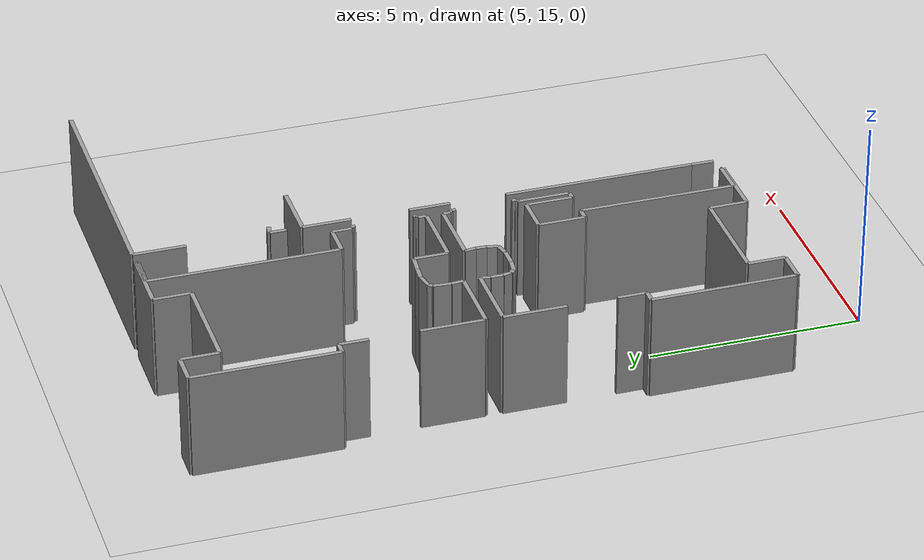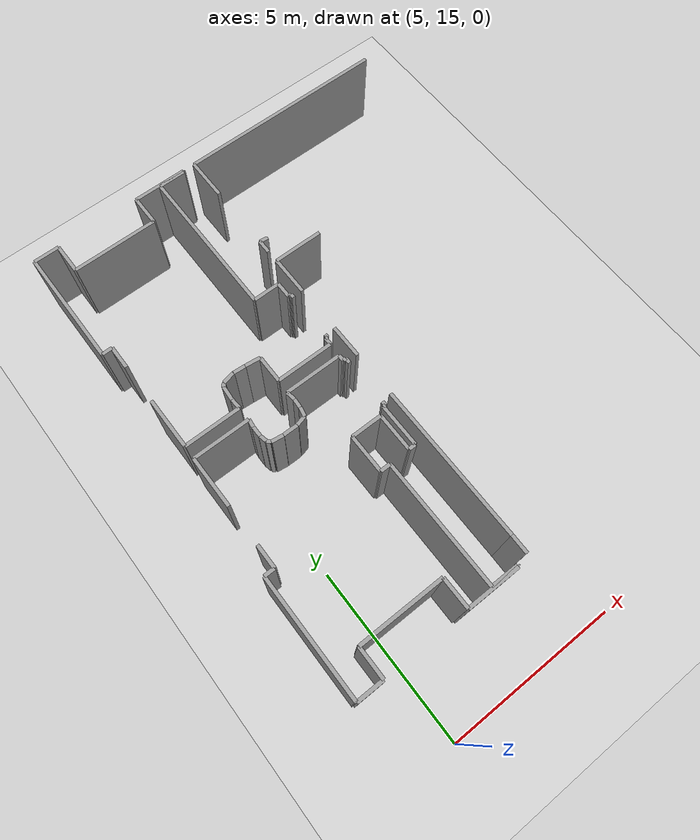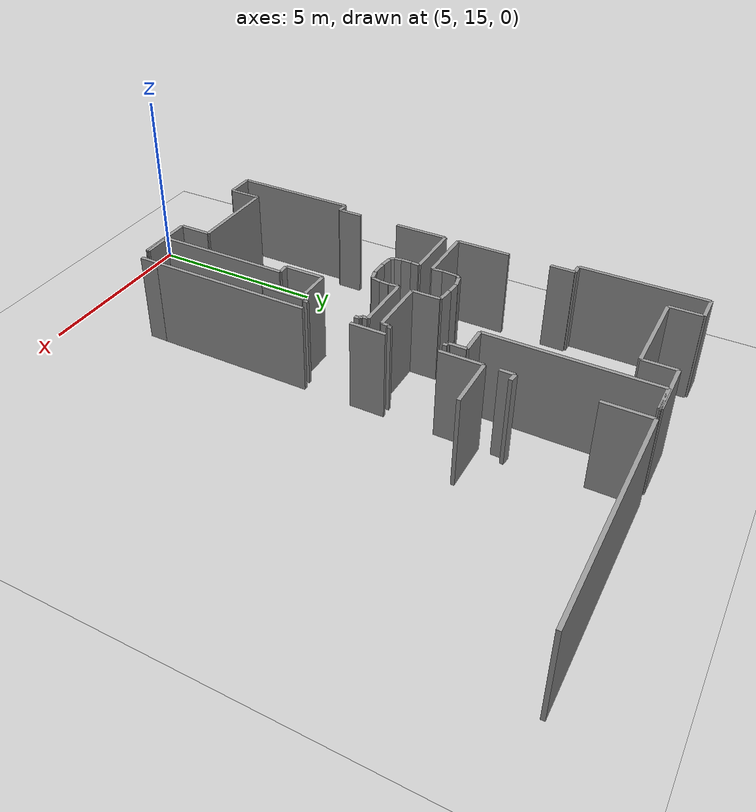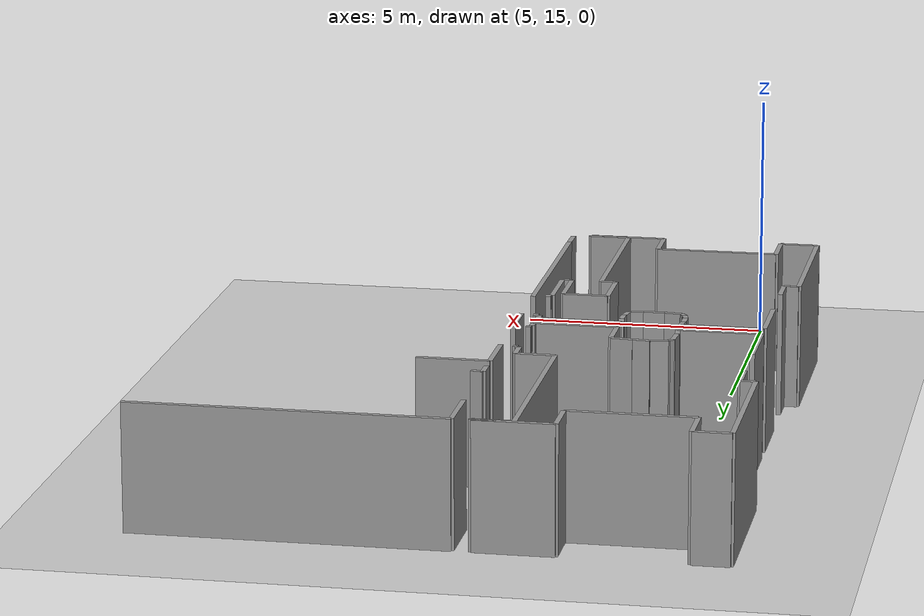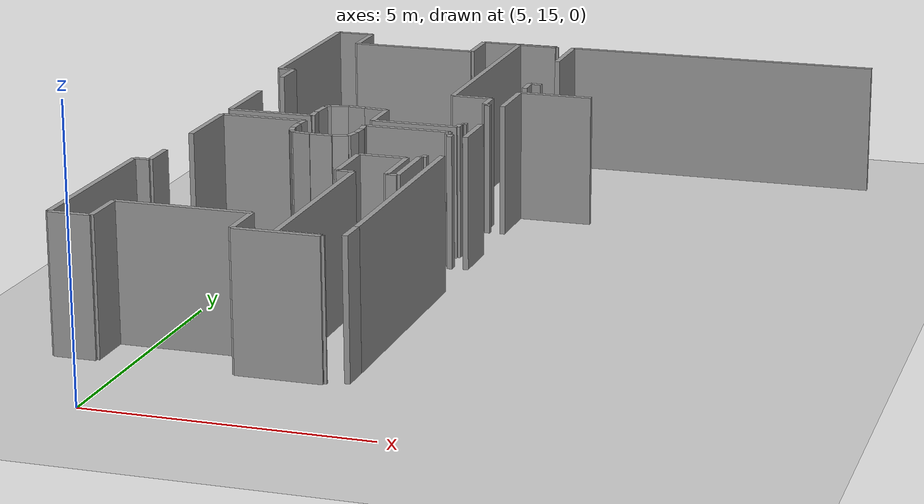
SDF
<sdf version="1.6">
 <world name="default">
  <model name="ground_plane">
   <static>1</static>
   <link name="link">
    <collision name="collision">
     <geometry><plane><normal>0 0 1</normal><size>100 100</size></plane></geometry>
     <surface><friction><ode><mu>100</mu><mu2>50</mu2></ode></friction></surface>
    </collision>
    <visual name="visual">
     <cast_shadows>0</cast_shadows>
     <geometry><plane><normal>0 0 1</normal><size>100 100</size></plane></geometry>
     <material>
      <script><uri>file://media/materials/scripts/gazebo.material</uri><name>Gazebo/Grey</name></script>
     </material>
    </visual>
   </link>
  </model>
  <model name="0510032267_A_40_1_101">
   <static>1</static>
   <link name="Wall_298">
    <collision name="Wall_298_Collision">
     <geometry><box><size>1.46449017976 0.1 2.5</size></box></geometry>
     <pose>0.732245089879 0 1.25 0 0 0</pose>
    </collision>
    <visual name="Wall_298_Visual">
     <pose>0.732245089879 0 1.25 0 0 0</pose>
     <geometry><box><size>1.46449017976 0.1 2.5</size></box></geometry>
     <material>
      <script><uri>file://media/materials/scripts/gazebo.material</uri><name>Gazebo/Grey</name></script>
      <ambient>1 1 1 1</ambient>
     </material>
    </visual>
    <pose>51.702832017 -9.45145159138 0 0 0 1.57079632679</pose>
   </link>
   <link name="Wall_299">
    <collision name="Wall_299_Collision">
     <geometry><box><size>0.66832296558 0.1 2.5</size></box></geometry>
     <pose>0.33416148279 0 1.25 0 0 0</pose>
    </collision>
    <visual name="Wall_299_Visual">
     <pose>0.33416148279 0 1.25 0 0 0</pose>
     <geometry><box><size>0.66832296558 0.1 2.5</size></box></geometry>
     <material>
      <script><uri>file://media/materials/scripts/gazebo.material</uri><name>Gazebo/Grey</name></script>
      <ambient>1 1 1 1</ambient>
     </material>
    </visual>
    <pose>51.702832017 -6.8450047338 0 0 0 1.57079632679</pose>
   </link>
   <link name="Wall_300">
    <collision name="Wall_300_Collision">
     <geometry><box><size>0.293177615819 0.1 2.5</size></box></geometry>
     <pose>0.14658880791 0 1.25 0 0 0</pose>
    </collision>
    <visual name="Wall_300_Visual">
     <pose>0.14658880791 0 1.25 0 0 0</pose>
     <geometry><box><size>0.293177615819 0.1 2.5</size></box></geometry>
     <material>
      <script><uri>file://media/materials/scripts/gazebo.material</uri><name>Gazebo/Grey</name></script>
      <ambient>1 1 1 1</ambient>
     </material>
    </visual>
    <pose>51.702832017 -6.17668176822 0 0 0 3.14159265359</pose>
   </link>
   <link name="Wall_301">
    <collision name="Wall_301_Collision">
     <geometry><box><size>3.38088309114 0.1 2.5</size></box></geometry>
     <pose>1.69044154557 0 1.25 0 0 0</pose>
    </collision>
    <visual name="Wall_301_Visual">
     <pose>1.69044154557 0 1.25 0 0 0</pose>
     <geometry><box><size>3.38088309114 0.1 2.5</size></box></geometry>
     <material>
      <script><uri>file://media/materials/scripts/gazebo.material</uri><name>Gazebo/Grey</name></script>
      <ambient>1 1 1 1</ambient>
     </material>
    </visual>
    <pose>51.4096544012 -6.17668176822 0 0 0 1.57079632679</pose>
   </link>
   <link name="Wall_302">
    <collision name="Wall_302_Collision">
     <geometry><box><size>0.73148259933 0.1 2.5</size></box></geometry>
     <pose>0.365741299665 0 1.25 0 0 0</pose>
    </collision>
    <visual name="Wall_302_Visual">
     <pose>0.365741299665 0 1.25 0 0 0</pose>
     <geometry><box><size>0.73148259933 0.1 2.5</size></box></geometry>
     <material>
      <script><uri>file://media/materials/scripts/gazebo.material</uri><name>Gazebo/Grey</name></script>
      <ambient>1 1 1 1</ambient>
     </material>
    </visual>
    <pose>51.4096544012 -2.79579867708 0 0 0 0.0</pose>
   </link>
   <link name="Wall_303">
    <collision name="Wall_303_Collision">
     <geometry><box><size>0.878262029877 0.1 2.5</size></box></geometry>
     <pose>0.439131014938 0 1.25 0 0 0</pose>
    </collision>
    <visual name="Wall_303_Visual">
     <pose>0.439131014938 0 1.25 0 0 0</pose>
     <geometry><box><size>0.878262029877 0.1 2.5</size></box></geometry>
     <material>
      <script><uri>file://media/materials/scripts/gazebo.material</uri><name>Gazebo/Grey</name></script>
      <ambient>1 1 1 1</ambient>
     </material>
    </visual>
    <pose>52.1411370005 -2.79579867708 0 0 0 -1.57079632679</pose>
   </link>
   <link name="Wall_304">
    <collision name="Wall_304_Collision">
     <geometry><box><size>2.45788828243 0.1 2.5</size></box></geometry>
     <pose>1.22894414121 0 1.25 0 0 0</pose>
    </collision>
    <visual name="Wall_304_Visual">
     <pose>1.22894414121 0 1.25 0 0 0</pose>
     <geometry><box><size>2.45788828243 0.1 2.5</size></box></geometry>
     <material>
      <script><uri>file://media/materials/scripts/gazebo.material</uri><name>Gazebo/Grey</name></script>
      <ambient>1 1 1 1</ambient>
     </material>
    </visual>
    <pose>52.1411370005 -3.67406070696 0 0 0 0.0</pose>
   </link>
   <link name="Wall_305">
    <collision name="Wall_305_Collision">
     <geometry><box><size>0.871907941974 0.1 2.5</size></box></geometry>
     <pose>0.435953970987 0 1.25 0 0 0</pose>
    </collision>
    <visual name="Wall_305_Visual">
     <pose>0.435953970987 0 1.25 0 0 0</pose>
     <geometry><box><size>0.871907941974 0.1 2.5</size></box></geometry>
     <material>
      <script><uri>file://media/materials/scripts/gazebo.material</uri><name>Gazebo/Grey</name></script>
      <ambient>1 1 1 1</ambient>
     </material>
    </visual>
    <pose>54.5990252829 -3.67406070696 0 0 0 1.57079632679</pose>
   </link>
   <link name="Wall_306">
    <collision name="Wall_306_Collision">
     <geometry><box><size>1.54658499546 0.1 2.5</size></box></geometry>
     <pose>0.773292497728 0 1.25 0 0 0</pose>
    </collision>
    <visual name="Wall_306_Visual">
     <pose>0.773292497728 0 1.25 0 0 0</pose>
     <geometry><box><size>1.54658499546 0.1 2.5</size></box></geometry>
     <material>
      <script><uri>file://media/materials/scripts/gazebo.material</uri><name>Gazebo/Grey</name></script>
      <ambient>1 1 1 1</ambient>
     </material>
    </visual>
    <pose>54.5990252829 -2.80215276498 0 0 0 0.0</pose>
   </link>
   <link name="Wall_307">
    <collision name="Wall_307_Collision">
     <geometry><box><size>0.0330412570927 0.1 2.5</size></box></geometry>
     <pose>0.0165206285464 0 1.25 0 0 0</pose>
    </collision>
    <visual name="Wall_307_Visual">
     <pose>0.0165206285464 0 1.25 0 0 0</pose>
     <geometry><box><size>0.0330412570927 0.1 2.5</size></box></geometry>
     <material>
      <script><uri>file://media/materials/scripts/gazebo.material</uri><name>Gazebo/Grey</name></script>
      <ambient>1 1 1 1</ambient>
     </material>
    </visual>
    <pose>56.1456102784 -2.80215276498 0 0 0 -1.57079632679</pose>
   </link>
   <link name="Wall_308">
    <collision name="Wall_308_Collision">
     <geometry><box><size>0.783967365405 0.1 2.5</size></box></geometry>
     <pose>0.391983682702 0 1.25 0 0 0</pose>
    </collision>
    <visual name="Wall_308_Visual">
     <pose>0.391983682702 0 1.25 0 0 0</pose>
     <geometry><box><size>0.783967365405 0.1 2.5</size></box></geometry>
     <material>
      <script><uri>file://media/materials/scripts/gazebo.material</uri><name>Gazebo/Grey</name></script>
      <ambient>1 1 1 1</ambient>
     </material>
    </visual>
    <pose>56.1456102784 -2.83519402207 0 0 0 3.14159265359</pose>
   </link>
   <link name="Wall_309">
    <collision name="Wall_309_Collision">
     <geometry><box><size>4.44188868909 0.1 2.5</size></box></geometry>
     <pose>2.22094434454 0 1.25 0 0 0</pose>
    </collision>
    <visual name="Wall_309_Visual">
     <pose>2.22094434454 0 1.25 0 0 0</pose>
     <geometry><box><size>4.44188868909 0.1 2.5</size></box></geometry>
     <material>
      <script><uri>file://media/materials/scripts/gazebo.material</uri><name>Gazebo/Grey</name></script>
      <ambient>1 1 1 1</ambient>
     </material>
    </visual>
    <pose>55.361642913 -2.83519402207 0 0 0 -1.57079632679</pose>
   </link>
   <link name="Wall_310">
    <collision name="Wall_310_Collision">
     <geometry><box><size>0.766303001036 0.1 2.5</size></box></geometry>
     <pose>0.383151500518 0 1.25 0 0 0</pose>
    </collision>
    <visual name="Wall_310_Visual">
     <pose>0.383151500518 0 1.25 0 0 0</pose>
     <geometry><box><size>0.766303001036 0.1 2.5</size></box></geometry>
     <material>
      <script><uri>file://media/materials/scripts/gazebo.material</uri><name>Gazebo/Grey</name></script>
      <ambient>1 1 1 1</ambient>
     </material>
    </visual>
    <pose>55.361642913 -7.27708271116 0 0 0 0.0</pose>
   </link>
   <link name="Wall_311">
    <collision name="Wall_311_Collision">
     <geometry><box><size>0.454698530299 0.1 2.5</size></box></geometry>
     <pose>0.22734926515 0 1.25 0 0 0</pose>
    </collision>
    <visual name="Wall_311_Visual">
     <pose>0.22734926515 0 1.25 0 0 0</pose>
     <geometry><box><size>0.454698530299 0.1 2.5</size></box></geometry>
     <material>
      <script><uri>file://media/materials/scripts/gazebo.material</uri><name>Gazebo/Grey</name></script>
      <ambient>1 1 1 1</ambient>
     </material>
    </visual>
    <pose>56.127945914 -7.27708271116 0 0 0 -1.57079632679</pose>
   </link>
   <link name="Wall_312">
    <collision name="Wall_312_Collision">
     <geometry><box><size>0.0831114697641 0.1 2.5</size></box></geometry>
     <pose>0.041555734882 0 1.25 0 0 0</pose>
    </collision>
    <visual name="Wall_312_Visual">
     <pose>0.041555734882 0 1.25 0 0 0</pose>
     <geometry><box><size>0.0831114697641 0.1 2.5</size></box></geometry>
     <material>
      <script><uri>file://media/materials/scripts/gazebo.material</uri><name>Gazebo/Grey</name></script>
      <ambient>1 1 1 1</ambient>
     </material>
    </visual>
    <pose>56.127945914 -7.73178124146 0 0 0 0.0</pose>
   </link>
   <link name="Wall_313">
    <collision name="Wall_313_Collision">
     <geometry><box><size>0.106494513245 0.1 2.5</size></box></geometry>
     <pose>0.0532472566226 0 1.25 0 0 0</pose>
    </collision>
    <visual name="Wall_313_Visual">
     <pose>0.0532472566226 0 1.25 0 0 0</pose>
     <geometry><box><size>0.106494513245 0.1 2.5</size></box></geometry>
     <material>
      <script><uri>file://media/materials/scripts/gazebo.material</uri><name>Gazebo/Grey</name></script>
      <ambient>1 1 1 1</ambient>
     </material>
    </visual>
    <pose>56.2110573838 -7.73178124146 0 0 0 -1.57079632679</pose>
   </link>
   <link name="Wall_314">
    <collision name="Wall_314_Collision">
     <geometry><box><size>0.093405092166 0.1 2.5</size></box></geometry>
     <pose>0.046702546083 0 1.25 0 0 0</pose>
    </collision>
    <visual name="Wall_314_Visual">
     <pose>0.046702546083 0 1.25 0 0 0</pose>
     <geometry><box><size>0.093405092166 0.1 2.5</size></box></geometry>
     <material>
      <script><uri>file://media/materials/scripts/gazebo.material</uri><name>Gazebo/Grey</name></script>
      <ambient>1 1 1 1</ambient>
     </material>
    </visual>
    <pose>56.2110573838 -9.1857236353 0 0 0 -1.57079632679</pose>
   </link>
   <link name="Wall_315">
    <collision name="Wall_315_Collision">
     <geometry><box><size>0.0613804891377 0.1 2.5</size></box></geometry>
     <pose>0.0306902445688 0 1.25 0 0 0</pose>
    </collision>
    <visual name="Wall_315_Visual">
     <pose>0.0306902445688 0 1.25 0 0 0</pose>
     <geometry><box><size>0.0613804891377 0.1 2.5</size></box></geometry>
     <material>
      <script><uri>file://media/materials/scripts/gazebo.material</uri><name>Gazebo/Grey</name></script>
      <ambient>1 1 1 1</ambient>
     </material>
    </visual>
    <pose>56.2110573838 -9.27912872747 0 0 0 3.14159265359</pose>
   </link>
   <link name="Wall_316">
    <collision name="Wall_316_Collision">
     <geometry><box><size>0.197866297282 0.1 2.5</size></box></geometry>
     <pose>0.0989331486412 0 1.25 0 0 0</pose>
    </collision>
    <visual name="Wall_316_Visual">
     <pose>0.0989331486412 0 1.25 0 0 0</pose>
     <geometry><box><size>0.197866297282 0.1 2.5</size></box></geometry>
     <material>
      <script><uri>file://media/materials/scripts/gazebo.material</uri><name>Gazebo/Grey</name></script>
      <ambient>1 1 1 1</ambient>
     </material>
    </visual>
    <pose>56.1496768946 -9.27912872747 0 0 0 -1.57079632679</pose>
   </link>
   <link name="Wall_317">
    <collision name="Wall_317_Collision">
     <geometry><box><size>1.63325475445 0.1 2.5</size></box></geometry>
     <pose>0.816627377223 0 1.25 0 0 0</pose>
    </collision>
    <visual name="Wall_317_Visual">
     <pose>0.816627377223 0 1.25 0 0 0</pose>
     <geometry><box><size>1.63325475445 0.1 2.5</size></box></geometry>
     <material>
      <script><uri>file://media/materials/scripts/gazebo.material</uri><name>Gazebo/Grey</name></script>
      <ambient>1 1 1 1</ambient>
     </material>
    </visual>
    <pose>56.1496768946 -9.47699502475 0 0 0 3.14159265359</pose>
   </link>
   <link name="Wall_318">
    <collision name="Wall_318_Collision">
     <geometry><box><size>0.786000673533 0.1 2.5</size></box></geometry>
     <pose>0.393000336767 0 1.25 0 0 0</pose>
    </collision>
    <visual name="Wall_318_Visual">
     <pose>0.393000336767 0 1.25 0 0 0</pose>
     <geometry><box><size>0.786000673533 0.1 2.5</size></box></geometry>
     <material>
      <script><uri>file://media/materials/scripts/gazebo.material</uri><name>Gazebo/Grey</name></script>
      <ambient>1 1 1 1</ambient>
     </material>
    </visual>
    <pose>54.5164221402 -9.47699502475 0 0 0 1.57079632679</pose>
   </link>
   <link name="Wall_319">
    <collision name="Wall_319_Collision">
     <geometry><box><size>0.436144963909 0.1 2.5</size></box></geometry>
     <pose>0.218072481955 0 1.25 0 0 0</pose>
    </collision>
    <visual name="Wall_319_Visual">
     <pose>0.218072481955 0 1.25 0 0 0</pose>
     <geometry><box><size>0.436144963909 0.1 2.5</size></box></geometry>
     <material>
      <script><uri>file://media/materials/scripts/gazebo.material</uri><name>Gazebo/Grey</name></script>
      <ambient>1 1 1 1</ambient>
     </material>
    </visual>
    <pose>54.5164221402 -8.69099435122 0 0 0 3.03357394872</pose>
   </link>
   <link name="Wall_320">
    <collision name="Wall_320_Collision">
     <geometry><box><size>0.340502877694 0.1 2.5</size></box></geometry>
     <pose>0.170251438847 0 1.25 0 0 0</pose>
    </collision>
    <visual name="Wall_320_Visual">
     <pose>0.170251438847 0 1.25 0 0 0</pose>
     <geometry><box><size>0.340502877694 0.1 2.5</size></box></geometry>
     <material>
      <script><uri>file://media/materials/scripts/gazebo.material</uri><name>Gazebo/Grey</name></script>
      <ambient>1 1 1 1</ambient>
     </material>
    </visual>
    <pose>54.0828191817 -8.64397410074 0 0 0 3.06725384754</pose>
   </link>
   <link name="Wall_321">
    <collision name="Wall_321_Collision">
     <geometry><box><size>0.349915876621 0.1 2.5</size></box></geometry>
     <pose>0.174957938311 0 1.25 0 0 0</pose>
    </collision>
    <visual name="Wall_321_Visual">
     <pose>0.174957938311 0 1.25 0 0 0</pose>
     <geometry><box><size>0.349915876621 0.1 2.5</size></box></geometry>
     <material>
      <script><uri>file://media/materials/scripts/gazebo.material</uri><name>Gazebo/Grey</name></script>
      <ambient>1 1 1 1</ambient>
     </material>
    </visual>
    <pose>53.7432567242 -8.61868483089 0 0 0 -2.94419709374</pose>
   </link>
   <link name="Wall_322">
    <collision name="Wall_322_Collision">
     <geometry><box><size>0.110647934627 0.1 2.5</size></box></geometry>
     <pose>0.0553239673136 0 1.25 0 0 0</pose>
    </collision>
    <visual name="Wall_322_Visual">
     <pose>0.0553239673136 0 1.25 0 0 0</pose>
     <geometry><box><size>0.110647934627 0.1 2.5</size></box></geometry>
     <material>
      <script><uri>file://media/materials/scripts/gazebo.material</uri><name>Gazebo/Grey</name></script>
      <ambient>1 1 1 1</ambient>
     </material>
    </visual>
    <pose>53.4001359775 -8.68730898023 0 0 0 -2.23979742174</pose>
   </link>
   <link name="Wall_323">
    <collision name="Wall_323_Collision">
     <geometry><box><size>0.409481010003 0.1 2.5</size></box></geometry>
     <pose>0.204740505001 0 1.25 0 0 0</pose>
    </collision>
    <visual name="Wall_323_Visual">
     <pose>0.204740505001 0 1.25 0 0 0</pose>
     <geometry><box><size>0.409481010003 0.1 2.5</size></box></geometry>
     <material>
      <script><uri>file://media/materials/scripts/gazebo.material</uri><name>Gazebo/Grey</name></script>
      <ambient>1 1 1 1</ambient>
     </material>
    </visual>
    <pose>53.3315118281 -8.77410582098 0 0 0 -1.65032932692</pose>
   </link>
   <link name="Wall_324">
    <collision name="Wall_324_Collision">
     <geometry><box><size>0.290088351918 0.1 2.5</size></box></geometry>
     <pose>0.145044175959 0 1.25 0 0 0</pose>
    </collision>
    <visual name="Wall_324_Visual">
     <pose>0.145044175959 0 1.25 0 0 0</pose>
     <geometry><box><size>0.290088351918 0.1 2.5</size></box></geometry>
     <material>
      <script><uri>file://media/materials/scripts/gazebo.material</uri><name>Gazebo/Grey</name></script>
      <ambient>1 1 1 1</ambient>
     </material>
    </visual>
    <pose>53.2989788981 -9.18229242783 0 0 0 -1.48350770354</pose>
   </link>
   <link name="Wall_325">
    <collision name="Wall_325_Collision">
     <geometry><box><size>1.62296113204 0.1 2.5</size></box></geometry>
     <pose>0.811480566022 0 1.25 0 0 0</pose>
    </collision>
    <visual name="Wall_325_Visual">
     <pose>0.811480566022 0 1.25 0 0 0</pose>
     <geometry><box><size>1.62296113204 0.1 2.5</size></box></geometry>
     <material>
      <script><uri>file://media/materials/scripts/gazebo.material</uri><name>Gazebo/Grey</name></script>
      <ambient>1 1 1 1</ambient>
     </material>
    </visual>
    <pose>53.3242681679 -9.47127634564 0 0 0 3.14159265359</pose>
   </link>
   <link name="Wall_326">
    <collision name="Wall_326_Collision">
     <geometry><box><size>0.0198833208655 0.1 2.5</size></box></geometry>
     <pose>0.00994166043277 0 1.25 0 0 0</pose>
    </collision>
    <visual name="Wall_326_Visual">
     <pose>0.00994166043277 0 1.25 0 0 0</pose>
     <geometry><box><size>0.0198833208655 0.1 2.5</size></box></geometry>
     <material>
      <script><uri>file://media/materials/scripts/gazebo.material</uri><name>Gazebo/Grey</name></script>
      <ambient>1 1 1 1</ambient>
     </material>
    </visual>
    <pose>51.7013070359 -9.47127634564 0 0 0 1.49402443553</pose>
   </link>
   <link name="Wall_327">
    <collision name="Wall_327_Collision">
     <geometry><box><size>3.36474370786 0.1 2.5</size></box></geometry>
     <pose>1.68237185393 0 1.25 0 0 0</pose>
    </collision>
    <visual name="Wall_327_Visual">
     <pose>1.68237185393 0 1.25 0 0 0</pose>
     <geometry><box><size>3.36474370786 0.1 2.5</size></box></geometry>
     <material>
      <script><uri>file://media/materials/scripts/gazebo.material</uri><name>Gazebo/Grey</name></script>
      <ambient>1 1 1 1</ambient>
     </material>
    </visual>
    <pose>51.3972003889 -16.5093182699 0 0 0 1.57079632679</pose>
   </link>
   <link name="Wall_328">
    <collision name="Wall_328_Collision">
     <geometry><box><size>0.297244232077 0.1 2.5</size></box></geometry>
     <pose>0.148622116038 0 1.25 0 0 0</pose>
    </collision>
    <visual name="Wall_328_Visual">
     <pose>0.148622116038 0 1.25 0 0 0</pose>
     <geometry><box><size>0.297244232077 0.1 2.5</size></box></geometry>
     <material>
      <script><uri>file://media/materials/scripts/gazebo.material</uri><name>Gazebo/Grey</name></script>
      <ambient>1 1 1 1</ambient>
     </material>
    </visual>
    <pose>51.3972003889 -13.144574562 0 0 0 0.0</pose>
   </link>
   <link name="Wall_329">
    <collision name="Wall_329_Collision">
     <geometry><box><size>0.673024990628 0.1 2.5</size></box></geometry>
     <pose>0.336512495314 0 1.25 0 0 0</pose>
    </collision>
    <visual name="Wall_329_Visual">
     <pose>0.336512495314 0 1.25 0 0 0</pose>
     <geometry><box><size>0.673024990628 0.1 2.5</size></box></geometry>
     <material>
      <script><uri>file://media/materials/scripts/gazebo.material</uri><name>Gazebo/Grey</name></script>
      <ambient>1 1 1 1</ambient>
     </material>
    </visual>
    <pose>51.6944446209 -13.144574562 0 0 0 1.57079632679</pose>
   </link>
   <link name="Wall_330">
    <collision name="Wall_330_Collision">
     <geometry><box><size>1.47033594063 0.1 2.5</size></box></geometry>
     <pose>0.735167970314 0 1.25 0 0 0</pose>
    </collision>
    <visual name="Wall_330_Visual">
     <pose>0.735167970314 0 1.25 0 0 0</pose>
     <geometry><box><size>1.47033594063 0.1 2.5</size></box></geometry>
     <material>
      <script><uri>file://media/materials/scripts/gazebo.material</uri><name>Gazebo/Grey</name></script>
      <ambient>1 1 1 1</ambient>
     </material>
    </visual>
    <pose>51.6944446209 -11.3245096233 0 0 0 1.57079632679</pose>
   </link>
   <link name="Wall_331">
    <collision name="Wall_331_Collision">
     <geometry><box><size>1.6333818362 0.1 2.5</size></box></geometry>
     <pose>0.816690918102 0 1.25 0 0 0</pose>
    </collision>
    <visual name="Wall_331_Visual">
     <pose>0.816690918102 0 1.25 0 0 0</pose>
     <geometry><box><size>1.6333818362 0.1 2.5</size></box></geometry>
     <material>
      <script><uri>file://media/materials/scripts/gazebo.material</uri><name>Gazebo/Grey</name></script>
      <ambient>1 1 1 1</ambient>
     </material>
    </visual>
    <pose>51.6944446209 -9.85417368264 0 0 0 0.0</pose>
   </link>
   <link name="Wall_332">
    <collision name="Wall_332_Collision">
     <geometry><box><size>0.229424284689 0.1 2.5</size></box></geometry>
     <pose>0.114712142345 0 1.25 0 0 0</pose>
    </collision>
    <visual name="Wall_332_Visual">
     <pose>0.114712142345 0 1.25 0 0 0</pose>
     <geometry><box><size>0.229424284689 0.1 2.5</size></box></geometry>
     <material>
      <script><uri>file://media/materials/scripts/gazebo.material</uri><name>Gazebo/Grey</name></script>
      <ambient>1 1 1 1</ambient>
     </material>
    </visual>
    <pose>53.3278264572 -9.85417368264 0 0 0 -1.69686894246</pose>
   </link>
   <link name="Wall_333">
    <collision name="Wall_333_Collision">
     <geometry><box><size>0.288983917804 0.1 2.5</size></box></geometry>
     <pose>0.144491958902 0 1.25 0 0 0</pose>
    </collision>
    <visual name="Wall_333_Visual">
     <pose>0.144491958902 0 1.25 0 0 0</pose>
     <geometry><box><size>0.288983917804 0.1 2.5</size></box></geometry>
     <material>
      <script><uri>file://media/materials/scripts/gazebo.material</uri><name>Gazebo/Grey</name></script>
      <ambient>1 1 1 1</ambient>
     </material>
    </visual>
    <pose>53.2989788981 -10.0817771113 0 0 0 -1.57079632679</pose>
   </link>
   <link name="Wall_334">
    <collision name="Wall_334_Collision">
     <geometry><box><size>0.199825952286 0.1 2.5</size></box></geometry>
     <pose>0.0999129761429 0 1.25 0 0 0</pose>
    </collision>
    <visual name="Wall_334_Visual">
     <pose>0.0999129761429 0 1.25 0 0 0</pose>
     <geometry><box><size>0.199825952286 0.1 2.5</size></box></geometry>
     <material>
      <script><uri>file://media/materials/scripts/gazebo.material</uri><name>Gazebo/Grey</name></script>
      <ambient>1 1 1 1</ambient>
     </material>
    </visual>
    <pose>53.2989788981 -10.3707610291 0 0 0 -1.35219636071</pose>
   </link>
   <link name="Wall_335">
    <collision name="Wall_335_Collision">
     <geometry><box><size>0.120301931323 0.1 2.5</size></box></geometry>
     <pose>0.0601509656613 0 1.25 0 0 0</pose>
    </collision>
    <visual name="Wall_335_Visual">
     <pose>0.0601509656613 0 1.25 0 0 0</pose>
     <geometry><box><size>0.120301931323 0.1 2.5</size></box></geometry>
     <material>
      <script><uri>file://media/materials/scripts/gazebo.material</uri><name>Gazebo/Grey</name></script>
      <ambient>1 1 1 1</ambient>
     </material>
    </visual>
    <pose>53.3423137776 -10.5658315277 0 0 0 -0.849680730438</pose>
   </link>
   <link name="Wall_336">
    <collision name="Wall_336_Collision">
     <geometry><box><size>0.338787120303 0.1 2.5</size></box></geometry>
     <pose>0.169393560152 0 1.25 0 0 0</pose>
    </collision>
    <visual name="Wall_336_Visual">
     <pose>0.169393560152 0 1.25 0 0 0</pose>
     <geometry><box><size>0.338787120303 0.1 2.5</size></box></geometry>
     <material>
      <script><uri>file://media/materials/scripts/gazebo.material</uri><name>Gazebo/Grey</name></script>
      <ambient>1 1 1 1</ambient>
     </material>
    </visual>
    <pose>53.4217398763 -10.6561866577 0 0 0 -0.128263223846</pose>
   </link>
   <link name="Wall_337">
    <collision name="Wall_337_Collision">
     <geometry><box><size>0.422673927271 0.1 2.5</size></box></geometry>
     <pose>0.211336963636 0 1.25 0 0 0</pose>
    </collision>
    <visual name="Wall_337_Visual">
     <pose>0.211336963636 0 1.25 0 0 0</pose>
     <geometry><box><size>0.422673927271 0.1 2.5</size></box></geometry>
     <material>
      <script><uri>file://media/materials/scripts/gazebo.material</uri><name>Gazebo/Grey</name></script>
      <ambient>1 1 1 1</ambient>
     </material>
    </visual>
    <pose>53.7577440446 -10.6995215372 0 0 0 0.0</pose>
   </link>
   <link name="Wall_338">
    <collision name="Wall_338_Collision">
     <geometry><box><size>0.287426293606 0.1 2.5</size></box></geometry>
     <pose>0.143713146803 0 1.25 0 0 0</pose>
    </collision>
    <visual name="Wall_338_Visual">
     <pose>0.143713146803 0 1.25 0 0 0</pose>
     <geometry><box><size>0.287426293606 0.1 2.5</size></box></geometry>
     <material>
      <script><uri>file://media/materials/scripts/gazebo.material</uri><name>Gazebo/Grey</name></script>
      <ambient>1 1 1 1</ambient>
     </material>
    </visual>
    <pose>54.1804179719 -10.6995215372 0 0 0 0.254308151153</pose>
   </link>
   <link name="Wall_339">
    <collision name="Wall_339_Collision">
     <geometry><box><size>0.262102852638 0.1 2.5</size></box></geometry>
     <pose>0.131051426319 0 1.25 0 0 0</pose>
    </collision>
    <visual name="Wall_339_Visual">
     <pose>0.131051426319 0 1.25 0 0 0</pose>
     <geometry><box><size>0.262102852638 0.1 2.5</size></box></geometry>
     <material>
      <script><uri>file://media/materials/scripts/gazebo.material</uri><name>Gazebo/Grey</name></script>
      <ambient>1 1 1 1</ambient>
     </material>
    </visual>
    <pose>54.4585999403 -10.6272120169 0 0 0 1.36275073219</pose>
   </link>
   <link name="Wall_340">
    <collision name="Wall_340_Collision">
     <geometry><box><size>0.253307322074 0.1 2.5</size></box></geometry>
     <pose>0.126653661037 0 1.25 0 0 0</pose>
    </collision>
    <visual name="Wall_340_Visual">
     <pose>0.126653661037 0 1.25 0 0 0</pose>
     <geometry><box><size>0.253307322074 0.1 2.5</size></box></geometry>
     <material>
      <script><uri>file://media/materials/scripts/gazebo.material</uri><name>Gazebo/Grey</name></script>
      <ambient>1 1 1 1</ambient>
     </material>
    </visual>
    <pose>54.5127367692 -10.3707610291 0 0 0 1.51357243783</pose>
   </link>
   <link name="Wall_341">
    <collision name="Wall_341_Collision">
     <geometry><box><size>0.258978155882 0.1 2.5</size></box></geometry>
     <pose>0.129489077941 0 1.25 0 0 0</pose>
    </collision>
    <visual name="Wall_341_Visual">
     <pose>0.129489077941 0 1.25 0 0 0</pose>
     <geometry><box><size>0.258978155882 0.1 2.5</size></box></geometry>
     <material>
      <script><uri>file://media/materials/scripts/gazebo.material</uri><name>Gazebo/Grey</name></script>
      <ambient>1 1 1 1</ambient>
     </material>
    </visual>
    <pose>54.5272240896 -10.1178683306 0 0 0 1.71061149683</pose>
   </link>
   <link name="Wall_342">
    <collision name="Wall_342_Collision">
     <geometry><box><size>1.64024425114 0.1 2.5</size></box></geometry>
     <pose>0.820122125569 0 1.25 0 0 0</pose>
    </collision>
    <visual name="Wall_342_Visual">
     <pose>0.820122125569 0 1.25 0 0 0</pose>
     <geometry><box><size>1.64024425114 0.1 2.5</size></box></geometry>
     <material>
      <script><uri>file://media/materials/scripts/gazebo.material</uri><name>Gazebo/Grey</name></script>
      <ambient>1 1 1 1</ambient>
     </material>
    </visual>
    <pose>54.4911328703 -9.86141734285 0 0 0 0.0</pose>
   </link>
   <link name="Wall_343">
    <collision name="Wall_343_Collision">
     <geometry><box><size>0.171560373366 0.1 2.5</size></box></geometry>
     <pose>0.0857801866831 0 1.25 0 0 0</pose>
    </collision>
    <visual name="Wall_343_Visual">
     <pose>0.0857801866831 0 1.25 0 0 0</pose>
     <geometry><box><size>0.171560373366 0.1 2.5</size></box></geometry>
     <material>
      <script><uri>file://media/materials/scripts/gazebo.material</uri><name>Gazebo/Grey</name></script>
      <ambient>1 1 1 1</ambient>
     </material>
    </visual>
    <pose>56.1313771215 -9.86141734285 0 0 0 -1.57079632679</pose>
   </link>
   <link name="Wall_344">
    <collision name="Wall_344_Collision">
     <geometry><box><size>0.082984388006 0.1 2.5</size></box></geometry>
     <pose>0.041492194003 0 1.25 0 0 0</pose>
    </collision>
    <visual name="Wall_344_Visual">
     <pose>0.041492194003 0 1.25 0 0 0</pose>
     <geometry><box><size>0.082984388006 0.1 2.5</size></box></geometry>
     <material>
      <script><uri>file://media/materials/scripts/gazebo.material</uri><name>Gazebo/Grey</name></script>
      <ambient>1 1 1 1</ambient>
     </material>
    </visual>
    <pose>56.1313771215 -10.0329777162 0 0 0 0.0</pose>
   </link>
   <link name="Wall_345">
    <collision name="Wall_345_Collision">
     <geometry><box><size>0.145381531208 0.1 2.5</size></box></geometry>
     <pose>0.0726907656041 0 1.25 0 0 0</pose>
    </collision>
    <visual name="Wall_345_Visual">
     <pose>0.0726907656041 0 1.25 0 0 0</pose>
     <geometry><box><size>0.145381531208 0.1 2.5</size></box></geometry>
     <material>
      <script><uri>file://media/materials/scripts/gazebo.material</uri><name>Gazebo/Grey</name></script>
      <ambient>1 1 1 1</ambient>
     </material>
    </visual>
    <pose>56.2143615095 -10.0329777162 0 0 0 -1.57079632679</pose>
   </link>
   <link name="Wall_346">
    <collision name="Wall_346_Collision">
     <geometry><box><size>0.117423544437 0.1 2.5</size></box></geometry>
     <pose>0.0587117722187 0 1.25 0 0 0</pose>
    </collision>
    <visual name="Wall_346_Visual">
     <pose>0.0587117722187 0 1.25 0 0 0</pose>
     <geometry><box><size>0.117423544437 0.1 2.5</size></box></geometry>
     <material>
      <script><uri>file://media/materials/scripts/gazebo.material</uri><name>Gazebo/Grey</name></script>
      <ambient>1 1 1 1</ambient>
     </material>
    </visual>
    <pose>56.2143615095 -11.4960699966 0 0 0 -1.57079632679</pose>
   </link>
   <link name="Wall_347">
    <collision name="Wall_347_Collision">
     <geometry><box><size>0.0687512311045 0.1 2.5</size></box></geometry>
     <pose>0.0343756155523 0 1.25 0 0 0</pose>
    </collision>
    <visual name="Wall_347_Visual">
     <pose>0.0343756155523 0 1.25 0 0 0</pose>
     <geometry><box><size>0.0687512311045 0.1 2.5</size></box></geometry>
     <material>
      <script><uri>file://media/materials/scripts/gazebo.material</uri><name>Gazebo/Grey</name></script>
      <ambient>1 1 1 1</ambient>
     </material>
    </visual>
    <pose>56.2143615095 -11.6134935411 0 0 0 3.14159265359</pose>
   </link>
   <link name="Wall_348">
    <collision name="Wall_348_Collision">
     <geometry><box><size>1.22786394627 0.1 2.5</size></box></geometry>
     <pose>0.613931973135 0 1.25 0 0 0</pose>
    </collision>
    <visual name="Wall_348_Visual">
     <pose>0.613931973135 0 1.25 0 0 0</pose>
     <geometry><box><size>1.22786394627 0.1 2.5</size></box></geometry>
     <material>
      <script><uri>file://media/materials/scripts/gazebo.material</uri><name>Gazebo/Grey</name></script>
      <ambient>1 1 1 1</ambient>
     </material>
    </visual>
    <pose>56.1456102784 -11.6134935411 0 0 0 -1.57079632679</pose>
   </link>
   <link name="Wall_349">
    <collision name="Wall_349_Collision">
     <geometry><box><size>0.197103806734 0.1 2.5</size></box></geometry>
     <pose>0.098551903367 0 1.25 0 0 0</pose>
    </collision>
    <visual name="Wall_349_Visual">
     <pose>0.098551903367 0 1.25 0 0 0</pose>
     <geometry><box><size>0.197103806734 0.1 2.5</size></box></geometry>
     <material>
      <script><uri>file://media/materials/scripts/gazebo.material</uri><name>Gazebo/Grey</name></script>
      <ambient>1 1 1 1</ambient>
     </material>
    </visual>
    <pose>56.1456102784 -12.8413574873 0 0 0 3.14159265359</pose>
   </link>
   <link name="Wall_350">
    <collision name="Wall_350_Collision">
     <geometry><box><size>1.08438864143 0.1 2.5</size></box></geometry>
     <pose>0.542194320716 0 1.25 0 0 0</pose>
    </collision>
    <visual name="Wall_350_Visual">
     <pose>0.542194320716 0 1.25 0 0 0</pose>
     <geometry><box><size>1.08438864143 0.1 2.5</size></box></geometry>
     <material>
      <script><uri>file://media/materials/scripts/gazebo.material</uri><name>Gazebo/Grey</name></script>
      <ambient>1 1 1 1</ambient>
     </material>
    </visual>
    <pose>55.9485064716 -12.8413574873 0 0 0 1.57079632679</pose>
   </link>
   <link name="Wall_351">
    <collision name="Wall_351_Collision">
     <geometry><box><size>0.892113941504 0.1 2.5</size></box></geometry>
     <pose>0.446056970752 0 1.25 0 0 0</pose>
    </collision>
    <visual name="Wall_351_Visual">
     <pose>0.446056970752 0 1.25 0 0 0</pose>
     <geometry><box><size>0.892113941504 0.1 2.5</size></box></geometry>
     <material>
      <script><uri>file://media/materials/scripts/gazebo.material</uri><name>Gazebo/Grey</name></script>
      <ambient>1 1 1 1</ambient>
     </material>
    </visual>
    <pose>55.9485064716 -11.7569688459 0 0 0 3.14159265359</pose>
   </link>
   <link name="Wall_352">
    <collision name="Wall_352_Collision">
     <geometry><box><size>1.09264895571 0.1 2.5</size></box></geometry>
     <pose>0.546324477853 0 1.25 0 0 0</pose>
    </collision>
    <visual name="Wall_352_Visual">
     <pose>0.546324477853 0 1.25 0 0 0</pose>
     <geometry><box><size>1.09264895571 0.1 2.5</size></box></geometry>
     <material>
      <script><uri>file://media/materials/scripts/gazebo.material</uri><name>Gazebo/Grey</name></script>
      <ambient>1 1 1 1</ambient>
     </material>
    </visual>
    <pose>55.0563925301 -11.7569688459 0 0 0 -1.57079632679</pose>
   </link>
   <link name="Wall_353">
    <collision name="Wall_353_Collision">
     <geometry><box><size>0.293940106367 0.1 2.5</size></box></geometry>
     <pose>0.146970053184 0 1.25 0 0 0</pose>
    </collision>
    <visual name="Wall_353_Visual">
     <pose>0.146970053184 0 1.25 0 0 0</pose>
     <geometry><box><size>0.293940106367 0.1 2.5</size></box></geometry>
     <material>
      <script><uri>file://media/materials/scripts/gazebo.material</uri><name>Gazebo/Grey</name></script>
      <ambient>1 1 1 1</ambient>
     </material>
    </visual>
    <pose>55.0563925301 -12.8496178016 0 0 0 0.0</pose>
   </link>
   <link name="Wall_354">
    <collision name="Wall_354_Collision">
     <geometry><box><size>3.64419649381 0.1 2.5</size></box></geometry>
     <pose>1.82209824691 0 1.25 0 0 0</pose>
    </collision>
    <visual name="Wall_354_Visual">
     <pose>1.82209824691 0 1.25 0 0 0</pose>
     <geometry><box><size>3.64419649381 0.1 2.5</size></box></geometry>
     <material>
      <script><uri>file://media/materials/scripts/gazebo.material</uri><name>Gazebo/Grey</name></script>
      <ambient>1 1 1 1</ambient>
     </material>
    </visual>
    <pose>55.3503326365 -12.8496178016 0 0 0 -1.57079632679</pose>
   </link>
   <link name="Wall_355">
    <collision name="Wall_355_Collision">
     <geometry><box><size>0.788033981662 0.1 2.5</size></box></geometry>
     <pose>0.394016990831 0 1.25 0 0 0</pose>
    </collision>
    <visual name="Wall_355_Visual">
     <pose>0.394016990831 0 1.25 0 0 0</pose>
     <geometry><box><size>0.788033981662 0.1 2.5</size></box></geometry>
     <material>
      <script><uri>file://media/materials/scripts/gazebo.material</uri><name>Gazebo/Grey</name></script>
      <ambient>1 1 1 1</ambient>
     </material>
    </visual>
    <pose>55.3503326365 -16.4938142954 0 0 0 0.0</pose>
   </link>
   <link name="Wall_356">
    <collision name="Wall_356_Collision">
     <geometry><box><size>0.0397765902694 0.1 2.5</size></box></geometry>
     <pose>0.0198882951347 0 1.25 0 0 0</pose>
    </collision>
    <visual name="Wall_356_Visual">
     <pose>0.0198882951347 0 1.25 0 0 0</pose>
     <geometry><box><size>0.0397765902694 0.1 2.5</size></box></geometry>
     <material>
      <script><uri>file://media/materials/scripts/gazebo.material</uri><name>Gazebo/Grey</name></script>
      <ambient>1 1 1 1</ambient>
     </material>
    </visual>
    <pose>56.1383666182 -16.4938142954 0 0 0 -1.57079632679</pose>
   </link>
   <link name="Wall_357">
    <collision name="Wall_357_Collision">
     <geometry><box><size>1.53171642977 0.1 2.5</size></box></geometry>
     <pose>0.765858214883 0 1.25 0 0 0</pose>
    </collision>
    <visual name="Wall_357_Visual">
     <pose>0.765858214883 0 1.25 0 0 0</pose>
     <geometry><box><size>1.53171642977 0.1 2.5</size></box></geometry>
     <material>
      <script><uri>file://media/materials/scripts/gazebo.material</uri><name>Gazebo/Grey</name></script>
      <ambient>1 1 1 1</ambient>
     </material>
    </visual>
    <pose>56.1383666182 -16.5335908857 0 0 0 3.14159265359</pose>
   </link>
   <link name="Wall_358">
    <collision name="Wall_358_Collision">
     <geometry><box><size>0.874195413619 0.1 2.5</size></box></geometry>
     <pose>0.43709770681 0 1.25 0 0 0</pose>
    </collision>
    <visual name="Wall_358_Visual">
     <pose>0.43709770681 0 1.25 0 0 0</pose>
     <geometry><box><size>0.874195413619 0.1 2.5</size></box></geometry>
     <material>
      <script><uri>file://media/materials/scripts/gazebo.material</uri><name>Gazebo/Grey</name></script>
      <ambient>1 1 1 1</ambient>
     </material>
    </visual>
    <pose>54.6066501884 -16.5335908857 0 0 0 1.57079632679</pose>
   </link>
   <link name="Wall_359">
    <collision name="Wall_359_Collision">
     <geometry><box><size>2.45102586749 0.1 2.5</size></box></geometry>
     <pose>1.22551293375 0 1.25 0 0 0</pose>
    </collision>
    <visual name="Wall_359_Visual">
     <pose>1.22551293375 0 1.25 0 0 0</pose>
     <geometry><box><size>2.45102586749 0.1 2.5</size></box></geometry>
     <material>
      <script><uri>file://media/materials/scripts/gazebo.material</uri><name>Gazebo/Grey</name></script>
      <ambient>1 1 1 1</ambient>
     </material>
    </visual>
    <pose>54.6066501884 -15.6593954721 0 0 0 3.14159265359</pose>
   </link>
   <link name="Wall_360">
    <collision name="Wall_360_Collision">
     <geometry><box><size>0.875084985926 0.1 2.5</size></box></geometry>
     <pose>0.437542492963 0 1.25 0 0 0</pose>
    </collision>
    <visual name="Wall_360_Visual">
     <pose>0.437542492963 0 1.25 0 0 0</pose>
     <geometry><box><size>0.875084985926 0.1 2.5</size></box></geometry>
     <material>
      <script><uri>file://media/materials/scripts/gazebo.material</uri><name>Gazebo/Grey</name></script>
      <ambient>1 1 1 1</ambient>
     </material>
    </visual>
    <pose>52.1556243209 -15.6593954721 0 0 0 -1.57079632679</pose>
   </link>
   <link name="Wall_361">
    <collision name="Wall_361_Collision">
     <geometry><box><size>0.760203076649 0.1 2.5</size></box></geometry>
     <pose>0.380101538325 0 1.25 0 0 0</pose>
    </collision>
    <visual name="Wall_361_Visual">
     <pose>0.380101538325 0 1.25 0 0 0</pose>
     <geometry><box><size>0.760203076649 0.1 2.5</size></box></geometry>
     <material>
      <script><uri>file://media/materials/scripts/gazebo.material</uri><name>Gazebo/Grey</name></script>
      <ambient>1 1 1 1</ambient>
     </material>
    </visual>
    <pose>52.1556243209 -16.534480458 0 0 0 3.14159265359</pose>
   </link>
   <link name="Wall_362">
    <collision name="Wall_362_Collision">
     <geometry><box><size>0.0252250087258 0.1 2.5</size></box></geometry>
     <pose>0.0126125043629 0 1.25 0 0 0</pose>
    </collision>
    <visual name="Wall_362_Visual">
     <pose>0.0126125043629 0 1.25 0 0 0</pose>
     <geometry><box><size>0.0252250087258 0.1 2.5</size></box></geometry>
     <material>
      <script><uri>file://media/materials/scripts/gazebo.material</uri><name>Gazebo/Grey</name></script>
      <ambient>1 1 1 1</ambient>
     </material>
    </visual>
    <pose>51.3954212443 -16.534480458 0 0 0 1.50020673698</pose>
   </link>
   <link name="Wall_363">
    <collision name="Wall_363_Collision">
     <geometry><box><size>1.22570355638 0.1 2.5</size></box></geometry>
     <pose>0.612851778191 0 1.25 0 0 0</pose>
    </collision>
    <visual name="Wall_363_Visual">
     <pose>0.612851778191 0 1.25 0 0 0</pose>
     <geometry><box><size>1.22570355638 0.1 2.5</size></box></geometry>
     <material>
      <script><uri>file://media/materials/scripts/gazebo.material</uri><name>Gazebo/Grey</name></script>
      <ambient>1 1 1 1</ambient>
     </material>
    </visual>
    <pose>56.5070307983 -4.02785632136 0 0 0 1.57079632679</pose>
   </link>
   <link name="Wall_364">
    <collision name="Wall_364_Collision">
     <geometry><box><size>6.12686571906 0.1 2.5</size></box></geometry>
     <pose>3.06343285953 0 1.25 0 0 0</pose>
    </collision>
    <visual name="Wall_364_Visual">
     <pose>3.06343285953 0 1.25 0 0 0</pose>
     <geometry><box><size>6.12686571906 0.1 2.5</size></box></geometry>
     <material>
      <script><uri>file://media/materials/scripts/gazebo.material</uri><name>Gazebo/Grey</name></script>
      <ambient>1 1 1 1</ambient>
     </material>
    </visual>
    <pose>56.5070307983 -2.80215276498 0 0 0 0.0</pose>
   </link>
   <link name="Wall_372">
    <collision name="Wall_372_Collision">
     <geometry><box><size>0.390522242485 0.1 2.5</size></box></geometry>
     <pose>0.195261121242 0 1.25 0 0 0</pose>
    </collision>
    <visual name="Wall_372_Visual">
     <pose>0.195261121242 0 1.25 0 0 0</pose>
     <geometry><box><size>0.390522242485 0.1 2.5</size></box></geometry>
     <material>
      <script><uri>file://media/materials/scripts/gazebo.material</uri><name>Gazebo/Grey</name></script>
      <ambient>1 1 1 1</ambient>
     </material>
    </visual>
    <pose>56.5010579556 -6.33146734952 0 0 0 1.57079632679</pose>
   </link>
   <link name="Wall_373">
    <collision name="Wall_373_Collision">
     <geometry><box><size>0.239083076175 0.1 2.5</size></box></geometry>
     <pose>0.119541538087 0 1.25 0 0 0</pose>
    </collision>
    <visual name="Wall_373_Visual">
     <pose>0.119541538087 0 1.25 0 0 0</pose>
     <geometry><box><size>0.239083076175 0.1 2.5</size></box></geometry>
     <material>
      <script><uri>file://media/materials/scripts/gazebo.material</uri><name>Gazebo/Grey</name></script>
      <ambient>1 1 1 1</ambient>
     </material>
    </visual>
    <pose>56.5010579556 -5.94094510703 0 0 0 -0.13971709865</pose>
   </link>
   <link name="Wall_382">
    <collision name="Wall_382_Collision">
     <geometry><box><size>4.44697195941 0.1 2.5</size></box></geometry>
     <pose>2.22348597971 0 1.25 0 0 0</pose>
    </collision>
    <visual name="Wall_382_Visual">
     <pose>2.22348597971 0 1.25 0 0 0</pose>
     <geometry><box><size>4.44697195941 0.1 2.5</size></box></geometry>
     <material>
      <script><uri>file://media/materials/scripts/gazebo.material</uri><name>Gazebo/Grey</name></script>
      <ambient>1 1 1 1</ambient>
     </material>
    </visual>
    <pose>56.5070307983 -15.8998341583 0 0 0 1.57079632679</pose>
   </link>
   <link name="Wall_383">
    <collision name="Wall_383_Collision">
     <geometry><box><size>0.955908984045 0.1 2.5</size></box></geometry>
     <pose>0.477954492022 0 1.25 0 0 0</pose>
    </collision>
    <visual name="Wall_383_Visual">
     <pose>0.477954492022 0 1.25 0 0 0</pose>
     <geometry><box><size>0.955908984045 0.1 2.5</size></box></geometry>
     <material>
      <script><uri>file://media/materials/scripts/gazebo.material</uri><name>Gazebo/Grey</name></script>
      <ambient>1 1 1 1</ambient>
     </material>
    </visual>
    <pose>56.5070307983 -10.1361681037 0 0 0 1.57079632679</pose>
   </link>
   <link name="Wall_384">
    <collision name="Wall_384_Collision">
     <geometry><box><size>1.1320443007 0.1 2.5</size></box></geometry>
     <pose>0.56602215035 0 1.25 0 0 0</pose>
    </collision>
    <visual name="Wall_384_Visual">
     <pose>0.56602215035 0 1.25 0 0 0</pose>
     <geometry><box><size>1.1320443007 0.1 2.5</size></box></geometry>
     <material>
      <script><uri>file://media/materials/scripts/gazebo.material</uri><name>Gazebo/Grey</name></script>
      <ambient>1 1 1 1</ambient>
     </material>
    </visual>
    <pose>56.5070307983 -7.82353427077 0 0 0 1.57079632679</pose>
   </link>
   <link name="Wall_385">
    <collision name="Wall_385_Collision">
     <geometry><box><size>1.42268028136 0.1 2.5</size></box></geometry>
     <pose>0.71134014068 0 1.25 0 0 0</pose>
    </collision>
    <visual name="Wall_385_Visual">
     <pose>0.71134014068 0 1.25 0 0 0</pose>
     <geometry><box><size>1.42268028136 0.1 2.5</size></box></geometry>
     <material>
      <script><uri>file://media/materials/scripts/gazebo.material</uri><name>Gazebo/Grey</name></script>
      <ambient>1 1 1 1</ambient>
     </material>
    </visual>
    <pose>56.5070307983 -6.69148997007 0 0 0 0.0</pose>
   </link>
   <link name="Wall_394">
    <collision name="Wall_394_Collision">
     <geometry><box><size>0.528333892326 0.1 2.5</size></box></geometry>
     <pose>0.264166946163 0 1.25 0 0 0</pose>
    </collision>
    <visual name="Wall_394_Visual">
     <pose>0.264166946163 0 1.25 0 0 0</pose>
     <geometry><box><size>0.528333892326 0.1 2.5</size></box></geometry>
     <material>
      <script><uri>file://media/materials/scripts/gazebo.material</uri><name>Gazebo/Grey</name></script>
      <ambient>1 1 1 1</ambient>
     </material>
    </visual>
    <pose>56.4994058928 -16.4281130265 0 0 0 1.55636384327</pose>
   </link>
   <pose>-47.8 33.6752466975 0 0 0 0</pose>
  </model>
 </world>
</sdf>
